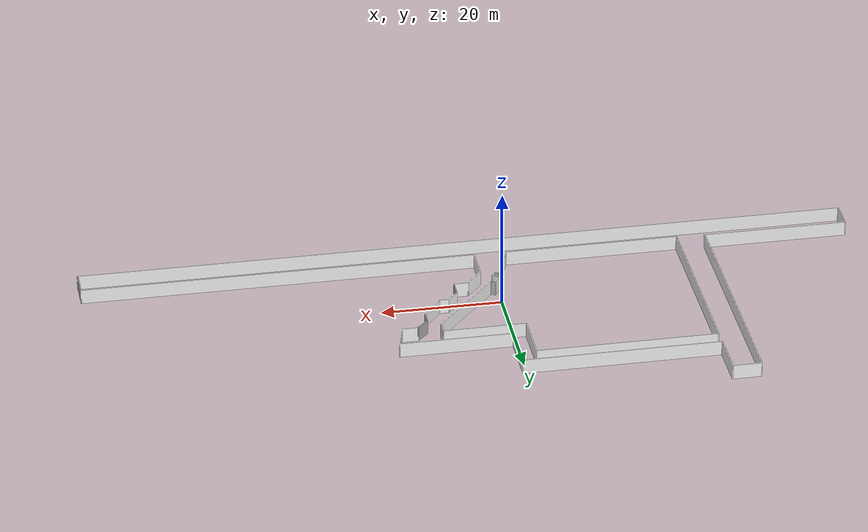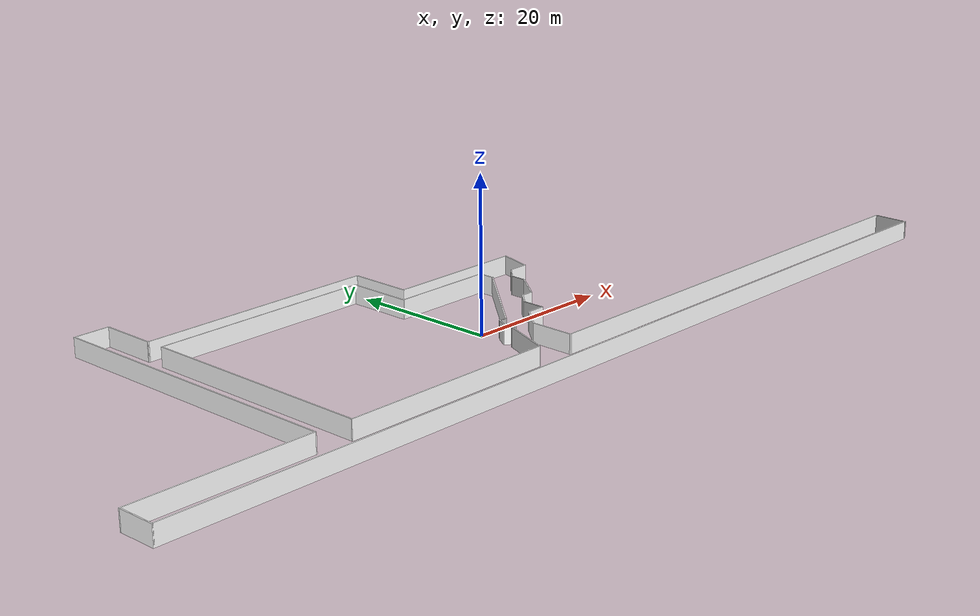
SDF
<?xml version='1.0' encoding='utf-8'?>
<sdf version="1.10">
  <model name="MIT_Tunnel">
    <pose>3.61177 6.74312 0 0 -0 0</pose>
    <link name="Wall_10">
      <collision name="Wall_10_Collision">
        <geometry>
          <box>
            <size>32.6917 0.15 2.5</size>
          </box>
        </geometry>
        <pose>0 0 1.25 0 -0 0</pose>
      </collision>
      <visual name="Wall_10_Visual">
        <pose>0 0 1.25 0 -0 0</pose>
        <geometry>
          <box>
            <size>32.6917 0.15 2.5</size>
          </box>
        </geometry>
        <material>
          <ambient>0.5 0.5 0.5 1</ambient>
          <diffuse>1 1 1 1</diffuse>
          <pbr>
            <metal>
              <albedo_map>materials/textures/ceiling_tiled.jpg</albedo_map>
              <metalness>0</metalness>
              <roughness>1</roughness>
            </metal>
          </pbr>
        </material>
      </visual>
      <pose>-19.1952 15.5558 0 0 0 -0.001042</pose>
    </link>
    <link name="Wall_12">
      <collision name="Wall_12_Collision">
        <geometry>
          <box>
            <size>8.5 0.15 2.5</size>
          </box>
        </geometry>
        <pose>0 0 1.25 0 -0 0</pose>
      </collision>
      <visual name="Wall_12_Visual">
        <pose>0 0 1.25 0 -0 0</pose>
        <geometry>
          <box>
            <size>8.5 0.15 2.5</size>
          </box>
        </geometry>
        <material>
          <ambient>0.5 0.5 0.5 1</ambient>
          <diffuse>1 1 1 1</diffuse>
          <pbr>
            <metal>
              <albedo_map>materials/textures/ceiling_tiled.jpg</albedo_map>
              <metalness>0</metalness>
              <roughness>1</roughness>
            </metal>
          </pbr>
        </material>
      </visual>
      <pose>-2.92483 11.3639 0 0 0 -1.5708</pose>
    </link>
    <link name="Wall_15">
      <collision name="Wall_15_Collision">
        <geometry>
          <box>
            <size>18.75 0.15 2.5</size>
          </box>
        </geometry>
        <pose>0 0 1.25 0 -0 0</pose>
      </collision>
      <visual name="Wall_15_Visual">
        <pose>0 0 1.25 0 -0 0</pose>
        <geometry>
          <box>
            <size>18.75 0.15 2.5</size>
          </box>
        </geometry>
        <material>
          <ambient>0.5 0.5 0.5 1</ambient>
          <diffuse>1 1 1 1</diffuse>
          <pbr>
            <metal>
              <albedo_map>materials/textures/ceiling_tiled.jpg</albedo_map>
              <metalness>0</metalness>
              <roughness>1</roughness>
            </metal>
          </pbr>
        </material>
      </visual>
      <pose>6.37517 7.18889 0 0 -0 0</pose>
    </link>
    <link name="Wall_17">
      <collision name="Wall_17_Collision">
        <geometry>
          <box>
            <size>4.75 0.15 2.5</size>
          </box>
        </geometry>
        <pose>0 0 1.25 0 -0 0</pose>
      </collision>
      <visual name="Wall_17_Visual">
        <pose>0 0 1.25 0 -0 0</pose>
        <geometry>
          <box>
            <size>4.75 0.15 2.5</size>
          </box>
        </geometry>
        <material>
          <ambient>0.5 0.5 0.5 1</ambient>
          <diffuse>1 1 1 1</diffuse>
          <pbr>
            <metal>
              <albedo_map>materials/textures/ceiling_tiled.jpg</albedo_map>
              <metalness>0</metalness>
              <roughness>1</roughness>
            </metal>
          </pbr>
        </material>
      </visual>
      <pose>15.0799 4.96726 0 0 0 -1.8326</pose>
    </link>
    <link name="Wall_18">
      <collision name="Wall_18_Collision">
        <geometry>
          <box>
            <size>2.75 0.15 2.5</size>
          </box>
        </geometry>
        <pose>0 0 1.25 0 -0 0</pose>
      </collision>
      <visual name="Wall_18_Visual">
        <pose>0 0 1.25 0 -0 0</pose>
        <geometry>
          <box>
            <size>2.75 0.15 2.5</size>
          </box>
        </geometry>
        <material>
          <ambient>0.5 0.5 0.5 1</ambient>
          <diffuse>1 1 1 1</diffuse>
          <pbr>
            <metal>
              <albedo_map>materials/textures/ceiling_tiled.jpg</albedo_map>
              <metalness>0</metalness>
              <roughness>1</roughness>
            </metal>
          </pbr>
        </material>
      </visual>
      <pose>13.1846 2.74563 0 0 -0 3.14159</pose>
    </link>
    <link name="Wall_19">
      <collision name="Wall_19_Collision">
        <geometry>
          <box>
            <size>2.75 0.15 2.5</size>
          </box>
        </geometry>
        <pose>0 0 1.25 0 -0 0</pose>
      </collision>
      <visual name="Wall_19_Visual">
        <pose>0 0 1.25 0 -0 0</pose>
        <geometry>
          <box>
            <size>2.75 0.15 2.5</size>
          </box>
        </geometry>
        <material>
          <ambient>0.3 0.3 0.3 1</ambient>
          <diffuse>0.7 0.7 0.7 1</diffuse>
          <specular>0.01 0.01 0.01 1</specular>
        </material>
      </visual>
      <pose>10.9654 1.82639 0 0 0 -2.35619</pose>
    </link>
    <link name="Wall_2">
      <collision name="Wall_2_Collision">
        <geometry>
          <box>
            <size>24.25 0.15 2.5</size>
          </box>
        </geometry>
        <pose>0 0 1.25 0 -0 0</pose>
      </collision>
      <visual name="Wall_2_Visual">
        <pose>0 0 1.25 0 -0 0</pose>
        <geometry>
          <box>
            <size>24.25 0.15 2.5</size>
          </box>
        </geometry>
        <material>
          <ambient>0.5 0.5 0.5 1</ambient>
          <diffuse>1 1 1 1</diffuse>
          <pbr>
            <metal>
              <albedo_map>materials/textures/ceiling_tiled.jpg</albedo_map>
              <metalness>0</metalness>
              <roughness>1</roughness>
            </metal>
          </pbr>
        </material>
      </visual>
      <pose>-52.25 -18.2689 0 0 -0 0</pose>
    </link>
    <link name="Wall_20">
      <collision name="Wall_20_Collision">
        <geometry>
          <box>
            <size>2.25 0.15 2.5</size>
          </box>
        </geometry>
        <pose>0 0 1.25 0 -0 0</pose>
      </collision>
      <visual name="Wall_20_Visual">
        <pose>0 0 1.25 0 -0 0</pose>
        <geometry>
          <box>
            <size>2.25 0.15 2.5</size>
          </box>
        </geometry>
        <material>
          <ambient>0.3 0.3 0.3 1</ambient>
          <diffuse>0.7 0.7 0.7 1</diffuse>
          <specular>0.01 0.01 0.01 1</specular>
        </material>
      </visual>
      <pose>10.0461 -0.142849 0 0 0 -1.5708</pose>
    </link>
    <link name="Wall_22">
      <collision name="Wall_22_Collision">
        <geometry>
          <box>
            <size>5.08891 0.15 2.5</size>
          </box>
        </geometry>
        <pose>0 0 1.25 0 -0 0</pose>
      </collision>
      <visual name="Wall_22_Visual">
        <pose>0 0 1.25 0 -0 0</pose>
        <geometry>
          <box>
            <size>5.08891 0.15 2.5</size>
          </box>
        </geometry>
        <material>
          <ambient>0.5 0.5 0.5 1</ambient>
          <diffuse>1 1 1 1</diffuse>
          <pbr>
            <metal>
              <albedo_map>materials/textures/ceiling_tiled.jpg</albedo_map>
              <metalness>0</metalness>
              <roughness>1</roughness>
            </metal>
          </pbr>
        </material>
      </visual>
      <pose>8.53852 -3.14869 0 0 0 -2.22749</pose>
    </link>
    <link name="Wall_23">
      <collision name="Wall_23_Collision">
        <geometry>
          <box>
            <size>1.75 0.15 2.5</size>
          </box>
        </geometry>
        <pose>0 0 1.25 0 -0 0</pose>
      </collision>
      <visual name="Wall_23_Visual">
        <pose>0 0 1.25 0 -0 0</pose>
        <geometry>
          <box>
            <size>1.75 0.15 2.5</size>
          </box>
        </geometry>
        <material>
          <ambient>0.5 0.5 0.5 1</ambient>
          <diffuse>1 1 1 1</diffuse>
          <pbr>
            <metal>
              <albedo_map>materials/textures/ceiling_tiled.jpg</albedo_map>
              <metalness>0</metalness>
              <roughness>1</roughness>
            </metal>
          </pbr>
        </material>
      </visual>
      <pose>6.23091 -5.10454 0 0 -0 3.14159</pose>
    </link>
    <link name="Wall_24">
      <collision name="Wall_24_Collision">
        <geometry>
          <box>
            <size>2.59216 0.15 2.5</size>
          </box>
        </geometry>
        <pose>0 0 1.25 0 -0 0</pose>
      </collision>
      <visual name="Wall_24_Visual">
        <pose>0 0 1.25 0 -0 0</pose>
        <geometry>
          <box>
            <size>2.59216 0.15 2.5</size>
          </box>
        </geometry>
        <material>
          <ambient>0.5 0.5 0.5 1</ambient>
          <diffuse>1 1 1 1</diffuse>
          <pbr>
            <metal>
              <albedo_map>materials/textures/ceiling_tiled.jpg</albedo_map>
              <metalness>0</metalness>
              <roughness>1</roughness>
            </metal>
          </pbr>
        </material>
      </visual>
      <pose>4.6163 -6.01417 0 0 0 -2.30114</pose>
    </link>
    <link name="Wall_26">
      <collision name="Wall_26_Collision">
        <geometry>
          <box>
            <size>3 0.15 2.5</size>
          </box>
        </geometry>
        <pose>0 0 1.25 0 -0 0</pose>
      </collision>
      <visual name="Wall_26_Visual">
        <pose>0 0 1.25 0 -0 0</pose>
        <geometry>
          <box>
            <size>3 0.15 2.5</size>
          </box>
        </geometry>
        <material>
          <ambient>0.3 0.3 0.3 1</ambient>
          <diffuse>0.7 0.7 0.7 1</diffuse>
          <specular>0.01 0.01 0.01 1</specular>
        </material>
      </visual>
      <pose>3.80168 -8.34882 0 0 0 -1.5708</pose>
    </link>
    <link name="Wall_27">
      <collision name="Wall_27_Collision">
        <geometry>
          <box>
            <size>2.5 0.15 2.5</size>
          </box>
        </geometry>
        <pose>0 0 1.25 0 -0 0</pose>
      </collision>
      <visual name="Wall_27_Visual">
        <pose>0 0 1.25 0 -0 0</pose>
        <geometry>
          <box>
            <size>2.5 0.15 2.5</size>
          </box>
        </geometry>
        <material>
          <ambient>0.5 0.5 0.5 1</ambient>
          <diffuse>1 1 1 1</diffuse>
          <pbr>
            <metal>
              <albedo_map>materials/textures/ceiling_tiled.jpg</albedo_map>
              <metalness>0</metalness>
              <roughness>1</roughness>
            </metal>
          </pbr>
        </material>
      </visual>
      <pose>2.62668 -9.77382 0 0 -0 3.14159</pose>
    </link>
    <link name="Wall_28">
      <collision name="Wall_28_Collision">
        <geometry>
          <box>
            <size>4.15096 0.15 2.5</size>
          </box>
        </geometry>
        <pose>0 0 1.25 0 -0 0</pose>
      </collision>
      <visual name="Wall_28_Visual">
        <pose>0 0 1.25 0 -0 0</pose>
        <geometry>
          <box>
            <size>4.15096 0.15 2.5</size>
          </box>
        </geometry>
        <material>
          <ambient>0.5 0.5 0.5 1</ambient>
          <diffuse>1 1 1 1</diffuse>
          <pbr>
            <metal>
              <albedo_map>materials/textures/ceiling_tiled.jpg</albedo_map>
              <metalness>0</metalness>
              <roughness>1</roughness>
            </metal>
          </pbr>
        </material>
      </visual>
      <pose>0.152007 -11.2946 0 0 0 -2.27796</pose>
    </link>
    <link name="Wall_29">
      <collision name="Wall_29_Collision">
        <geometry>
          <box>
            <size>5.87777 0.15 2.5</size>
          </box>
        </geometry>
        <pose>0 0 1.25 0 -0 0</pose>
      </collision>
      <visual name="Wall_29_Visual">
        <pose>0 0 1.25 0 -0 0</pose>
        <geometry>
          <box>
            <size>5.87777 0.15 2.5</size>
          </box>
        </geometry>
        <material>
          <ambient>0.5 0.5 0.5 1</ambient>
          <diffuse>1 1 1 1</diffuse>
          <pbr>
            <metal>
              <albedo_map>materials/textures/ceiling_tiled.jpg</albedo_map>
              <metalness>0</metalness>
              <roughness>1</roughness>
            </metal>
          </pbr>
        </material>
      </visual>
      <pose>-1.14312 -15.679 0 0 0 -1.56921</pose>
    </link>
    <link name="Wall_30">
      <collision name="Wall_30_Collision">
        <geometry>
          <box>
            <size>65.5 0.15 2.5</size>
          </box>
        </geometry>
        <pose>0 0 1.25 0 -0 0</pose>
      </collision>
      <visual name="Wall_30_Visual">
        <pose>0 0 1.25 0 -0 0</pose>
        <geometry>
          <box>
            <size>65.5 0.15 2.5</size>
          </box>
        </geometry>
        <material>
          <ambient>0.5 0.5 0.5 1</ambient>
          <diffuse>1 1 1 1</diffuse>
          <pbr>
            <metal>
              <albedo_map>materials/textures/ceiling_tiled.jpg</albedo_map>
              <metalness>0</metalness>
              <roughness>1</roughness>
            </metal>
          </pbr>
        </material>
      </visual>
      <pose>31.5103 -18.5427 0 0 -0 0</pose>
    </link>
    <link name="Wall_32">
      <collision name="Wall_32_Collision">
        <geometry>
          <box>
            <size>4.75 0.15 2.5</size>
          </box>
        </geometry>
        <pose>0 0 1.25 0 -0 0</pose>
      </collision>
      <visual name="Wall_32_Visual">
        <pose>0 0 1.25 0 -0 0</pose>
        <geometry>
          <box>
            <size>4.75 0.15 2.5</size>
          </box>
        </geometry>
        <material>
          <ambient>0.3 0.3 0.3 1</ambient>
          <diffuse>0.7 0.7 0.7 1</diffuse>
          <specular>0.01 0.01 0.01 1</specular>
        </material>
      </visual>
      <pose>64.1853 -20.8427 0 0 0 -1.5708</pose>
    </link>
    <link name="Wall_34">
      <collision name="Wall_34_Collision">
        <geometry>
          <box>
            <size>5 0.15 2.5</size>
          </box>
        </geometry>
        <pose>0 0 1.25 0 -0 0</pose>
      </collision>
      <visual name="Wall_34_Visual">
        <pose>0 0 1.25 0 -0 0</pose>
        <geometry>
          <box>
            <size>5 0.15 2.5</size>
          </box>
        </geometry>
        <material>
          <ambient>0.5 0.5 0.5 1</ambient>
          <diffuse>1 1 1 1</diffuse>
          <pbr>
            <metal>
              <albedo_map>materials/textures/ceiling_tiled.jpg</albedo_map>
              <metalness>0</metalness>
              <roughness>1</roughness>
            </metal>
          </pbr>
        </material>
      </visual>
      <pose>-64.3 -20.6939 0 0 0 -1.5708</pose>
    </link>
    <link name="Wall_35">
      <collision name="Wall_35_Collision">
        <geometry>
          <box>
            <size>128.75 0.15 2.5</size>
          </box>
        </geometry>
        <pose>0 0 1.25 0 -0 0</pose>
      </collision>
      <visual name="Wall_35_Visual">
        <pose>0 0 1.25 0 -0 0</pose>
        <geometry>
          <box>
            <size>128.75 0.15 2.5</size>
          </box>
        </geometry>
        <material>
          <ambient>0.5 0.5 0.5 1</ambient>
          <diffuse>1 1 1 1</diffuse>
          <pbr>
            <metal>
              <albedo_map>materials/textures/ceiling_tiled.jpg</albedo_map>
              <metalness>0</metalness>
              <roughness>1</roughness>
            </metal>
          </pbr>
        </material>
      </visual>
      <pose>1e-06 -23.1189 0 0 -0 0</pose>
    </link>
    <link name="Wall_37">
      <collision name="Wall_37_Collision">
        <geometry>
          <box>
            <size>4.75 0.15 2.5</size>
          </box>
        </geometry>
        <pose>0 0 1.25 0 -0 0</pose>
      </collision>
      <visual name="Wall_37_Visual">
        <pose>0 0 1.25 0 -0 0</pose>
        <geometry>
          <box>
            <size>4.75 0.15 2.5</size>
          </box>
        </geometry>
        <material>
          <ambient>0.5 0.5 0.5 1</ambient>
          <diffuse>1 1 1 1</diffuse>
          <pbr>
            <metal>
              <albedo_map>materials/textures/ceiling_tiled.jpg</albedo_map>
              <metalness>0</metalness>
              <roughness>1</roughness>
            </metal>
          </pbr>
        </material>
      </visual>
      <pose>-37.9 23.0811 0 0 -0 0</pose>
    </link>
    <link name="Wall_41">
      <collision name="Wall_41_Collision">
        <geometry>
          <box>
            <size>31.75 0.15 2.5</size>
          </box>
        </geometry>
        <pose>0 0 1.25 0 -0 0</pose>
      </collision>
      <visual name="Wall_41_Visual">
        <pose>0 0 1.25 0 -0 0</pose>
        <geometry>
          <box>
            <size>31.75 0.15 2.5</size>
          </box>
        </geometry>
        <material>
          <ambient>0.5 0.5 0.5 1</ambient>
          <diffuse>1 1 1 1</diffuse>
          <pbr>
            <metal>
              <albedo_map>materials/textures/ceiling_tiled.jpg</albedo_map>
              <metalness>0</metalness>
              <roughness>1</roughness>
            </metal>
          </pbr>
        </material>
      </visual>
      <pose>-35.4175 -2.72616 0 0 -0 1.5708</pose>
    </link>
    <link name="Wall_43">
      <collision name="Wall_43_Collision">
        <geometry>
          <box>
            <size>30 0.15 2.5</size>
          </box>
        </geometry>
        <pose>0 0 1.25 0 -0 0</pose>
      </collision>
      <visual name="Wall_43_Visual">
        <pose>0 0 1.25 0 -0 0</pose>
        <geometry>
          <box>
            <size>30 0.15 2.5</size>
          </box>
        </geometry>
        <material>
          <ambient>0.5 0.5 0.5 1</ambient>
          <diffuse>1 1 1 1</diffuse>
          <pbr>
            <metal>
              <albedo_map>materials/textures/ceiling_tiled.jpg</albedo_map>
              <metalness>0</metalness>
              <roughness>1</roughness>
            </metal>
          </pbr>
        </material>
      </visual>
      <pose>-20.4925 13.0738 0 0 -0 0</pose>
    </link>
    <link name="Wall_44">
      <collision name="Wall_44_Collision">
        <geometry>
          <box>
            <size>8.75 0.15 2.5</size>
          </box>
        </geometry>
        <pose>0 0 1.25 0 -0 0</pose>
      </collision>
      <visual name="Wall_44_Visual">
        <pose>0 0 1.25 0 -0 0</pose>
        <geometry>
          <box>
            <size>8.75 0.15 2.5</size>
          </box>
        </geometry>
        <material>
          <ambient>0.5 0.5 0.5 1</ambient>
          <diffuse>1 1 1 1</diffuse>
          <pbr>
            <metal>
              <albedo_map>materials/textures/ceiling_tiled.jpg</albedo_map>
              <metalness>0</metalness>
              <roughness>1</roughness>
            </metal>
          </pbr>
        </material>
      </visual>
      <pose>-5.56745 8.77384 0 0 0 -1.5708</pose>
    </link>
    <link name="Wall_45">
      <collision name="Wall_45_Collision">
        <geometry>
          <box>
            <size>13.75 0.15 2.5</size>
          </box>
        </geometry>
        <pose>0 0 1.25 0 -0 0</pose>
      </collision>
      <visual name="Wall_45_Visual">
        <pose>0 0 1.25 0 -0 0</pose>
        <geometry>
          <box>
            <size>13.75 0.15 2.5</size>
          </box>
        </geometry>
        <material>
          <ambient>0.5 0.5 0.5 1</ambient>
          <diffuse>1 1 1 1</diffuse>
          <pbr>
            <metal>
              <albedo_map>materials/textures/ceiling_tiled.jpg</albedo_map>
              <metalness>0</metalness>
              <roughness>1</roughness>
            </metal>
          </pbr>
        </material>
      </visual>
      <pose>1.23255 4.47384 0 0 -0 0</pose>
    </link>
    <link name="Wall_46">
      <collision name="Wall_46_Collision">
        <geometry>
          <box>
            <size>2.25 0.15 2.5</size>
          </box>
        </geometry>
        <pose>0 0 1.25 0 -0 0</pose>
      </collision>
      <visual name="Wall_46_Visual">
        <pose>0 0 1.25 0 -0 0</pose>
        <geometry>
          <box>
            <size>2.25 0.15 2.5</size>
          </box>
        </geometry>
        <material>
          <ambient>0.5 0.5 0.5 1</ambient>
          <diffuse>1 1 1 1</diffuse>
          <pbr>
            <metal>
              <albedo_map>materials/textures/ceiling_tiled.jpg</albedo_map>
              <metalness>0</metalness>
              <roughness>1</roughness>
            </metal>
          </pbr>
        </material>
      </visual>
      <pose>8.03255 3.42384 0 0 0 -1.5708</pose>
    </link>
    <link name="Wall_47">
      <collision name="Wall_47_Collision">
        <geometry>
          <box>
            <size>15.8243 0.15 2.5</size>
          </box>
        </geometry>
        <pose>0 0 1.25 0 -0 0</pose>
      </collision>
      <visual name="Wall_47_Visual">
        <pose>0 0 1.25 0 -0 0</pose>
        <geometry>
          <box>
            <size>15.8243 0.15 2.5</size>
          </box>
        </geometry>
        <material>
          <ambient>0.5 0.5 0.5 1</ambient>
          <diffuse>1 1 1 1</diffuse>
          <pbr>
            <metal>
              <albedo_map>materials/textures/ceiling_tiled.jpg</albedo_map>
              <metalness>0</metalness>
              <roughness>1</roughness>
            </metal>
          </pbr>
        </material>
      </visual>
      <pose>2.89068 -3.54071 0 0 0 -2.28642</pose>
    </link>
    <link name="Wall_5">
      <collision name="Wall_5_Collision">
        <geometry>
          <box>
            <size>41.5 0.15 2.5</size>
          </box>
        </geometry>
        <pose>0 0 1.25 0 -0 0</pose>
      </collision>
      <visual name="Wall_5_Visual">
        <pose>0 0 1.25 0 -0 0</pose>
        <geometry>
          <box>
            <size>41.5 0.15 2.5</size>
          </box>
        </geometry>
        <material>
          <ambient>0.5 0.5 0.5 1</ambient>
          <diffuse>1 1 1 1</diffuse>
          <pbr>
            <metal>
              <albedo_map>materials/textures/ceiling_tiled.jpg</albedo_map>
              <metalness>0</metalness>
              <roughness>1</roughness>
            </metal>
          </pbr>
        </material>
      </visual>
      <pose>-40.2 2.40609 0 0 -0 1.5708</pose>
    </link>
    <link name="Wall_50">
      <collision name="Wall_50_Collision">
        <geometry>
          <box>
            <size>1 0.15 2.5</size>
          </box>
        </geometry>
        <pose>0 0 1.25 0 -0 0</pose>
      </collision>
      <visual name="Wall_50_Visual">
        <pose>0 0 1.25 0 -0 0</pose>
        <geometry>
          <box>
            <size>1 0.15 2.5</size>
          </box>
        </geometry>
        <material>
          <ambient>0.3 0.3 0.3 1</ambient>
          <diffuse>0.7 0.7 0.7 1</diffuse>
          <specular>0.01 0.01 0.01 1</specular>
        </material>
      </visual>
      <pose>-2.6617 -9.34526 0 0 -0 2.87979</pose>
    </link>
    <link name="Wall_51">
      <collision name="Wall_51_Collision">
        <geometry>
          <box>
            <size>1.75 0.15 2.5</size>
          </box>
        </geometry>
        <pose>0 0 1.25 0 -0 0</pose>
      </collision>
      <visual name="Wall_51_Visual">
        <pose>0 0 1.25 0 -0 0</pose>
        <geometry>
          <box>
            <size>1.75 0.15 2.5</size>
          </box>
        </geometry>
        <material>
          <ambient>0.5 0.5 0.5 1</ambient>
          <diffuse>1 1 1 1</diffuse>
          <pbr>
            <metal>
              <albedo_map>materials/textures/ceiling_tiled.jpg</albedo_map>
              <metalness>0</metalness>
              <roughness>1</roughness>
            </metal>
          </pbr>
        </material>
      </visual>
      <pose>-3.47221 -9.92808 0 0 0 -2.0944</pose>
    </link>
    <link name="Wall_52">
      <collision name="Wall_52_Collision">
        <geometry>
          <box>
            <size>1.5 0.15 2.5</size>
          </box>
        </geometry>
        <pose>0 0 1.25 0 -0 0</pose>
      </collision>
      <visual name="Wall_52_Visual">
        <pose>0 0 1.25 0 -0 0</pose>
        <geometry>
          <box>
            <size>1.5 0.15 2.5</size>
          </box>
        </geometry>
        <material>
          <ambient>0.5 0.5 0.5 1</ambient>
          <diffuse>1 1 1 1</diffuse>
          <pbr>
            <metal>
              <albedo_map>materials/textures/ceiling_tiled.jpg</albedo_map>
              <metalness>0</metalness>
              <roughness>1</roughness>
            </metal>
          </pbr>
        </material>
      </visual>
      <pose>-3.39492 -11.0982 0 0 0 -0.785398</pose>
    </link>
    <link name="Wall_53">
      <collision name="Wall_53_Collision">
        <geometry>
          <box>
            <size>0.75 0.15 2.5</size>
          </box>
        </geometry>
        <pose>0 0 1.25 0 -0 0</pose>
      </collision>
      <visual name="Wall_53_Visual">
        <pose>0 0 1.25 0 -0 0</pose>
        <geometry>
          <box>
            <size>0.75 0.15 2.5</size>
          </box>
        </geometry>
        <material>
          <ambient>0.5 0.5 0.5 1</ambient>
          <diffuse>1 1 1 1</diffuse>
          <pbr>
            <metal>
              <albedo_map>materials/textures/ceiling_tiled.jpg</albedo_map>
              <metalness>0</metalness>
              <roughness>1</roughness>
            </metal>
          </pbr>
        </material>
      </visual>
      <pose>-3.12975 -11.7876 0 0 0 -2.35619</pose>
    </link>
    <link name="Wall_54">
      <collision name="Wall_54_Collision">
        <geometry>
          <box>
            <size>0.75 0.15 2.5</size>
          </box>
        </geometry>
        <pose>0 0 1.25 0 -0 0</pose>
      </collision>
      <visual name="Wall_54_Visual">
        <pose>0 0 1.25 0 -0 0</pose>
        <geometry>
          <box>
            <size>0.75 0.15 2.5</size>
          </box>
        </geometry>
        <material>
          <ambient>0.3 0.3 0.3 1</ambient>
          <diffuse>0.7 0.7 0.7 1</diffuse>
          <specular>0.01 0.01 0.01 1</specular>
        </material>
      </visual>
      <pose>-3.64188 -11.9998 0 0 -0 3.14159</pose>
    </link>
    <link name="Wall_55">
      <collision name="Wall_55_Collision">
        <geometry>
          <box>
            <size>7.13355 0.15 2.5</size>
          </box>
        </geometry>
        <pose>0 0 1.25 0 -0 0</pose>
      </collision>
      <visual name="Wall_55_Visual">
        <pose>0 0 1.25 0 -0 0</pose>
        <geometry>
          <box>
            <size>7.13355 0.15 2.5</size>
          </box>
        </geometry>
        <material>
          <ambient>0.5 0.5 0.5 1</ambient>
          <diffuse>1 1 1 1</diffuse>
          <pbr>
            <metal>
              <albedo_map>materials/textures/ceiling_tiled.jpg</albedo_map>
              <metalness>0</metalness>
              <roughness>1</roughness>
            </metal>
          </pbr>
        </material>
      </visual>
      <pose>-5.21192 -15.2524 0 0 0 -1.94306</pose>
    </link>
    <link name="Wall_57">
      <collision name="Wall_57_Collision">
        <geometry>
          <box>
            <size>29 0.15 2.5</size>
          </box>
        </geometry>
        <pose>0 0 1.25 0 -0 0</pose>
      </collision>
      <visual name="Wall_57_Visual">
        <pose>0 0 1.25 0 -0 0</pose>
        <geometry>
          <box>
            <size>29 0.15 2.5</size>
          </box>
        </geometry>
        <material>
          <ambient>0.5 0.5 0.5 1</ambient>
          <diffuse>1 1 1 1</diffuse>
          <pbr>
            <metal>
              <albedo_map>materials/textures/ceiling_tiled.jpg</albedo_map>
              <metalness>0</metalness>
              <roughness>1</roughness>
            </metal>
          </pbr>
        </material>
      </visual>
      <pose>-20.9925 -18.5262 0 0 -0 0</pose>
    </link>
    <link name="Wall_9">
      <collision name="Wall_9_Collision">
        <geometry>
          <box>
            <size>7.75 0.15 2.5</size>
          </box>
        </geometry>
        <pose>0 0 1.25 0 -0 0</pose>
      </collision>
      <visual name="Wall_9_Visual">
        <pose>0 0 1.25 0 -0 0</pose>
        <geometry>
          <box>
            <size>7.75 0.15 2.5</size>
          </box>
        </geometry>
        <material>
          <ambient>0.5 0.5 0.5 1</ambient>
          <diffuse>1 1 1 1</diffuse>
          <pbr>
            <metal>
              <albedo_map>materials/textures/ceiling_tiled.jpg</albedo_map>
              <metalness>0</metalness>
              <roughness>1</roughness>
            </metal>
          </pbr>
        </material>
      </visual>
      <pose>-35.4657 19.3427 0 0 0 -1.5708</pose>
    </link>
    <static>1</static>
  </model>
</sdf>
